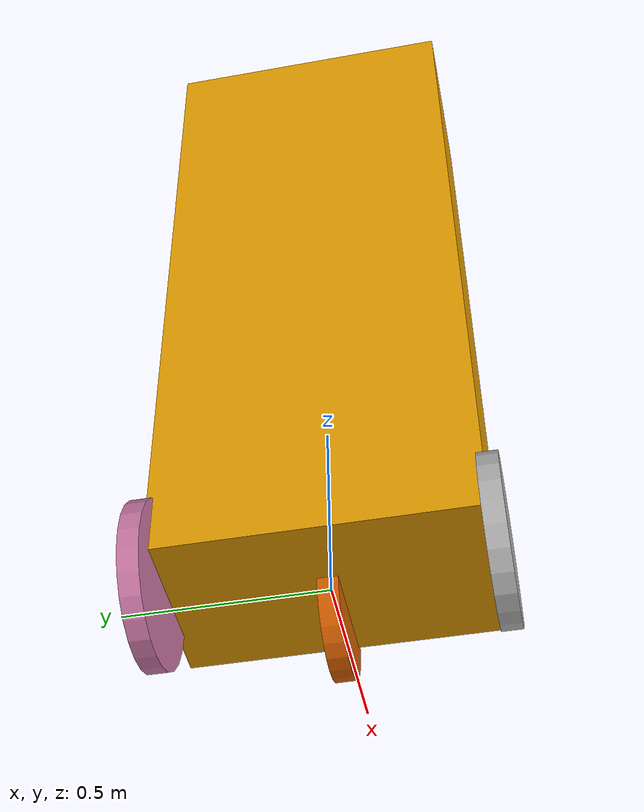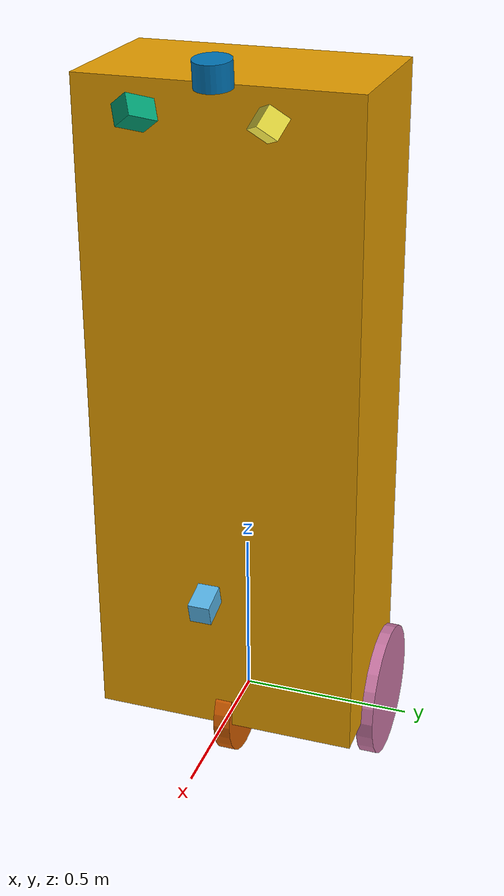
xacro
<?xml version="1.0"?>
<robot xmlns:xacro="http://www.ros.org/wiki/xacro" name="navvis">
	<link name="base">
		<visual>
			<!-- Shift the box up half its height. !-->
			<origin xyz="0.0 0.0 0.96" rpy="0.0 0.0 0.0" />
			<geometry>
				<box size="0.45 0.78 1.92" />
			</geometry>
		</visual>
		<collision>
			<!-- Shift the box up half its height. !-->
			<origin xyz="0.0 0.0 0.96" rpy="0.0 0.0 0.0" />
			<geometry>
				<box size="0.45 0.78 1.92" />
			</geometry>
		</collision>
	</link>
	<link name="laser_vert_bottom">
		<visual>
			<!-- Shift the box up half its height. !-->
			<origin xyz="0.0 0.0 0.0435" rpy="0.0 0.0 0.0" />
			<geometry>
				<box size="0.062 0.062 0.087" />
			</geometry>
		</visual>
		<collision>
			<!-- Shift the box up half its height. !-->
			<origin xyz="0.0 0.0 0.0435" rpy="0.0 0.0 0.0" />
			<geometry>
				<box size="0.062 0.062 0.0435" />
			</geometry>
		</collision>
	</link>
	<joint name="base_laser_vert_bottom_joint" type="fixed">
		<parent link="base" />
		<child link="laser_vert_bottom" />
		<origin xyz="0.3158 -0.0021 0.5100" rpy="3.1355 -1.3045 0.0025" />
	</joint>
	<link name="laser_vert_top_right">
		<visual>
			<!-- Shift the box up half its height. !-->
			<origin xyz="0.0 0.0 0.0435" rpy="0.0 0.0 0.0" />
			<geometry>
				<box size="0.062 0.062 0.087" />
			</geometry>
		</visual>
		<collision>
			<!-- Shift the box up half its height. !-->
			<origin xyz="0.0 0.0 0.0435" rpy="0.0 0.0 0.0" />
			<geometry>
				<box size="0.062 0.062 0.0435" />
			</geometry>
		</collision>
	</link>
	<joint name="base_laser_vert_top_right_joint" type="fixed">
		<parent link="base" />
		<child link="laser_vert_top_right" />
		<origin xyz="0.2978 -0.1450 1.8451" rpy="-1.1760 0.6313 -1.9377" />
	</joint>
	<link name="laser_vert_top_left">
		<visual>
			<!-- Shift the box up half its height. !-->
			<origin xyz="0.0 0.0 0.0435" rpy="0.0 0.0 0.0" />
			<geometry>
				<box size="0.062 0.062 0.087" />
			</geometry>
		</visual>
		<collision>
			<!-- Shift the box up half its height. !-->
			<origin xyz="0.0 0.0 0.0435" rpy="0.0 0.0 0.0" />
			<geometry>
				<box size="0.062 0.062 0.0435" />
			</geometry>
		</collision>
	</link>
	<joint name="base_laser_vert_top_left_joint" type="fixed">
		<parent link="base" />
		<child link="laser_vert_top_left" />
		<origin xyz="0.2997 0.1531 1.8443" rpy="1.1780 0.6198 1.9560" />
	</joint>
	<link name="laser_horiz">
		<visual>
			<!-- Shift the box up half its height. !-->
			<origin xyz="0.0 0.0 0.026" rpy="0.0 0.0 0.0" />
			<geometry>
				<cylinder radius="0.052" length="0.072" />
			</geometry>
		</visual>
		<collision>
			<!-- Shift the box up half its height. !-->
			<origin xyz="0.0 0.0 0.026" rpy="0.0 0.0 0.0" />
			<geometry>
				<cylinder radius="0.052" length="0.072" />
			</geometry>
		</collision>
	</link>
	<joint name="base_laser_horiz" type="fixed">
		<parent link="base" />
		<child link="laser_horiz" />
		<origin xyz="0.2325 0.001 1.9201" rpy="-0.0012 0.1146 -0.0015" />
	</joint>
	<link name="wheel_center">
		<visual>
			<!-- Shift the box up half its height. !-->
			<origin xyz="0.0 0.0 0.0" rpy="0.0 0.0 0.0" />
			<geometry>
				<cylinder radius="0.15" length="0.05" />
			</geometry>
		</visual>
		<collision>
			<!-- Shift the box up half its height. !-->
			<origin xyz="0.0 0.0 0.0" rpy="0.0 0.0 0.0" />
			<geometry>
				<cylinder radius="0.15" length="0.05" />
			</geometry>
		</collision>
	</link>
	<joint name="base_wheel_center" type="continuous">
		<parent link="base" />
		<child link="wheel_center" />
		<axis xyz="0.0 0.0 1.0"/>
		<origin xyz="0.10 0.0 0.0" rpy="-1.57 0.0 0.0" />
		<limit effort="20.0" velocity="1.0" lower="-3.14" upper="3.14" />
	</joint>
	<!-- XACRO Macro definition block to add around the wheel link and joint !-->
	<xacro:macro name="xacro_name" params="side reflect">
		<link name="wheel_${side}">
			<visual>
				<!-- Shift the box up half its height. !-->
				<origin xyz="0.0 0.0 0.0" rpy="0.0 0.0 0.0" />
				<geometry>
					<cylinder radius="0.2" length="0.05" />
				</geometry>
			</visual>
			<collision>
				<!-- Shift the box up half its height. !-->
				<origin xyz="0.0 0.0 0.0" rpy="0.0 0.0 0.0" />
				<geometry>
					<cylinder radius="0.2" length="0.05" />
				</geometry>
			</collision>
		</link>
		<joint name="base_wheel_${side}" type="continuous">
			<parent link="base" />
			<child link="wheel_${side}" />
			<axis xyz="0.0 0.0 1.0"/>
			<origin xyz="-0.10 ${reflect * 0.4} 0.0" rpy="-1.57 0.0 0.0" />
			<limit effort="20.0" velocity="1.0" lower="-3.14" upper="3.14" />
		</joint>
	</xacro:macro>
	<!-- Call the XACRO Macro. It should be the left wheel !-->
	<xacro:xacro_name side="left" reflect="1" />
	<xacro:xacro_name side="right" reflect="-1" />
</robot>
